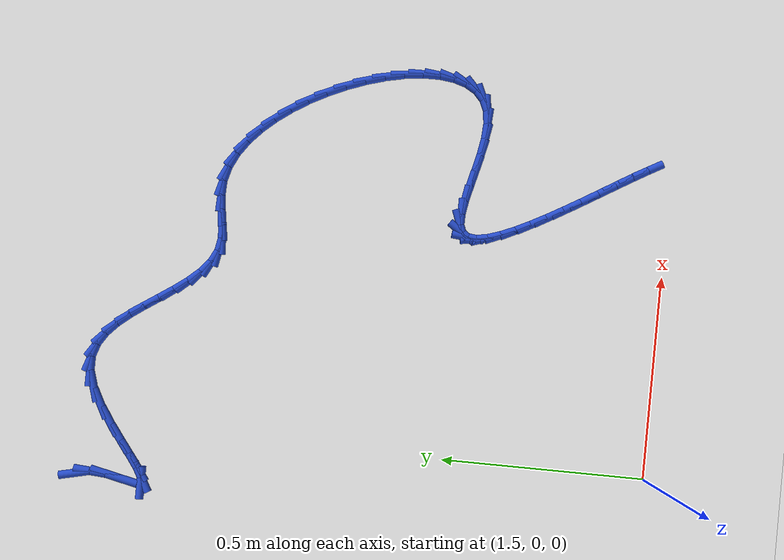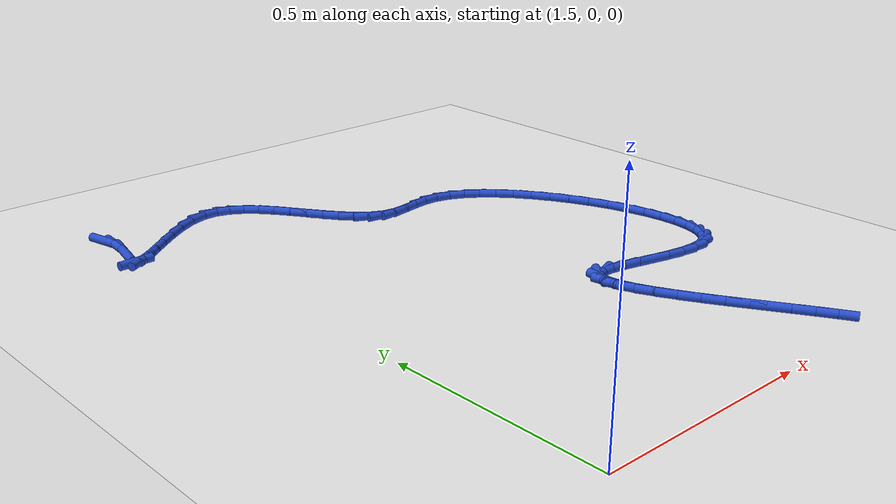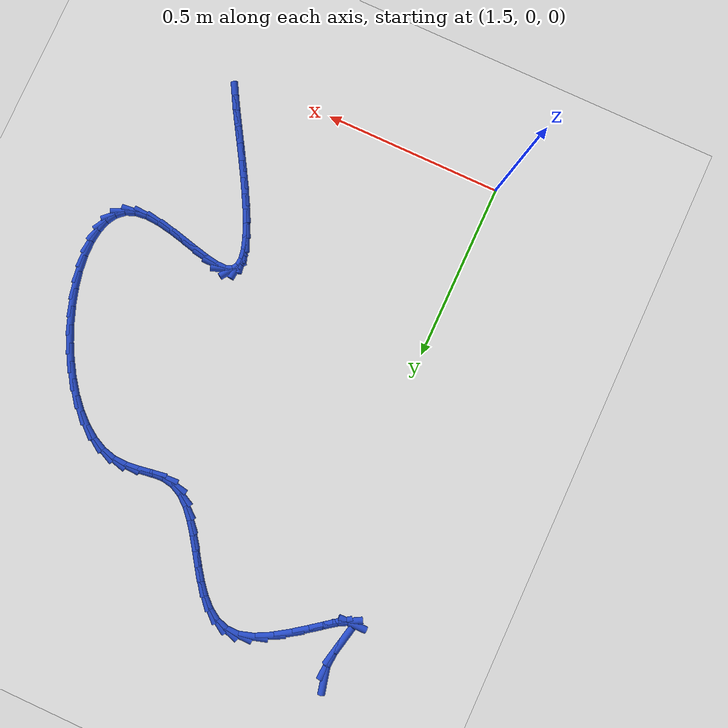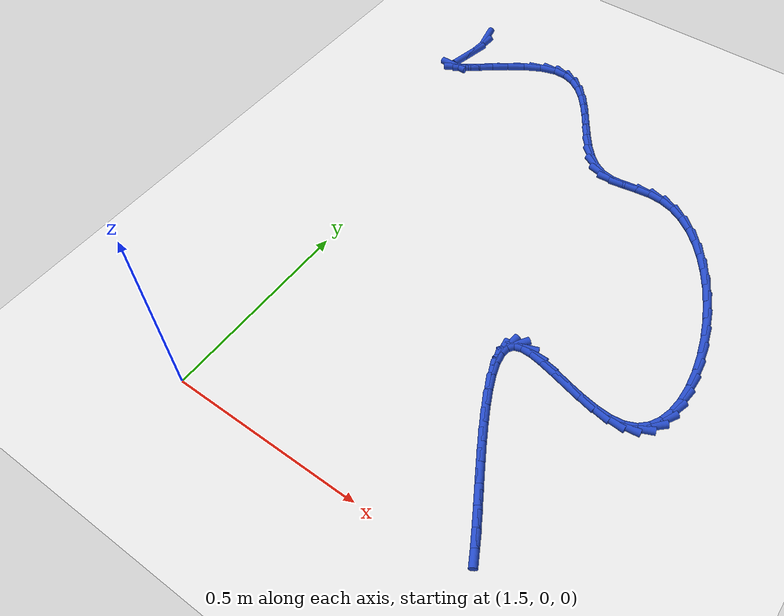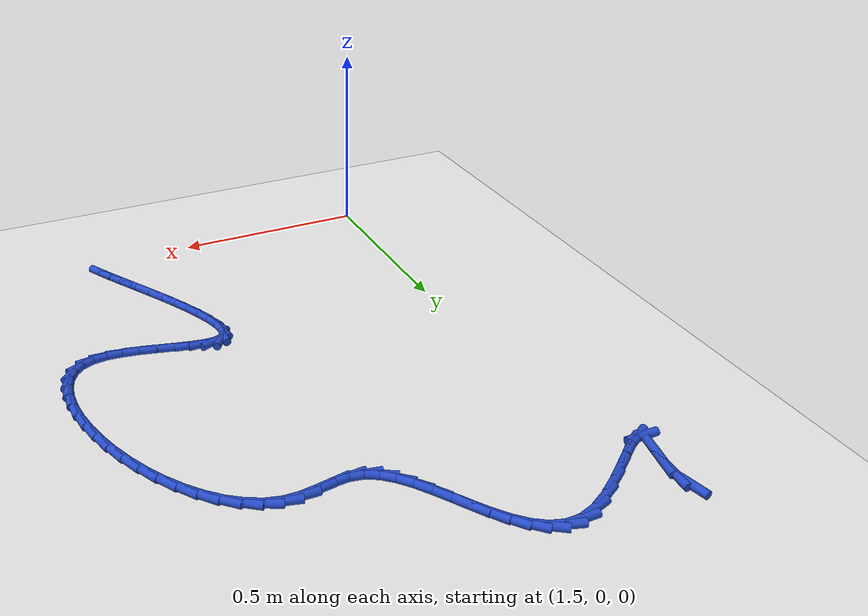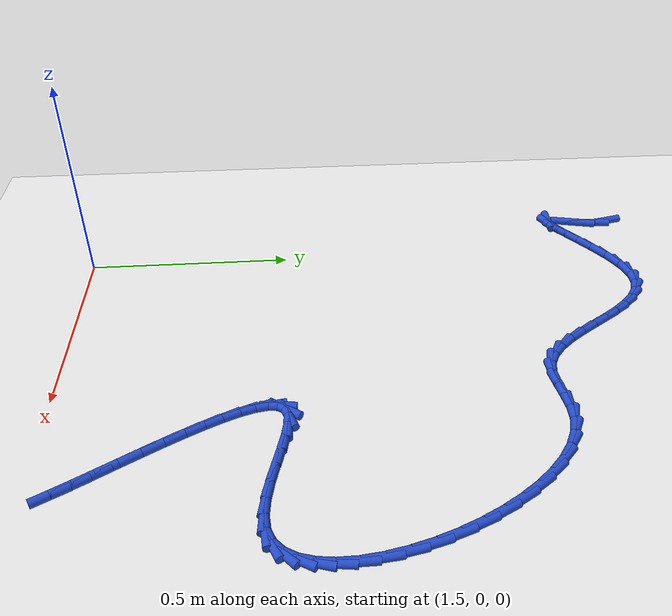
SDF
<sdf version="1.6">
 <world name="default">
  <model name="ground_plane">
   <static>1</static>
   <link name="link">
    <collision name="collision">
     <geometry><plane><normal>0 0 1</normal><size>100 100</size></plane></geometry>
     <surface><friction><ode><mu>100</mu><mu2>50</mu2></ode></friction></surface>
    </collision>
    <visual name="visual">
     <cast_shadows>0</cast_shadows>
     <geometry><plane><normal>0 0 1</normal><size>100 100</size></plane></geometry>
     <material>
      <script><uri>file://media/materials/scripts/gazebo.material</uri><name>Gazebo/WhiteGlow</name></script>
     </material>
    </visual>
   </link>
  </model>
  <model name="line">
   <link name="link_69">
    <pose>1.3833979452334115 1.3932117592749724 0.01 0 1.57 -1.3432471710661074</pose>
    <collision name="collision">
     <geometry><cylinder><radius>0.01</radius><length>0.08</length></cylinder></geometry>
    </collision>
    <visual name="visual">
     <material>
      <script><name>Gazebo/Blue</name><uri>file://media/materials/scripts/gazebo.material</uri></script>
     </material>
     <geometry><cylinder><radius>0.01</radius><length>0.08</length></cylinder></geometry>
    </visual>
   </link>
   <link name="link_70">
    <pose>1.3915658045837955 1.3579385155905102 0.01 0 1.57 1.4942122126148025</pose>
    <collision name="collision">
     <geometry><cylinder><radius>0.01</radius><length>0.08</length></cylinder></geometry>
    </collision>
    <visual name="visual">
     <material>
      <script><name>Gazebo/Blue</name><uri>file://media/materials/scripts/gazebo.material</uri></script>
     </material>
     <geometry><cylinder><radius>0.01</radius><length>0.08</length></cylinder></geometry>
    </visual>
   </link>
   <link name="link_71">
    <pose>1.3884750019547014 1.3176591750437523 0.01 0 1.57 1.3556691968439516</pose>
    <collision name="collision">
     <geometry><cylinder><radius>0.01</radius><length>0.08</length></cylinder></geometry>
    </collision>
    <visual name="visual">
     <material>
      <script><name>Gazebo/Blue</name><uri>file://media/materials/scripts/gazebo.material</uri></script>
     </material>
     <geometry><cylinder><radius>0.01</radius><length>0.08</length></cylinder></geometry>
    </visual>
   </link>
   <link name="link_72">
    <pose>1.3798650765142189 1.278255998444669 0.01 0 1.57 1.358058329380303</pose>
    <collision name="collision">
     <geometry><cylinder><radius>0.01</radius><length>0.08</length></cylinder></geometry>
    </collision>
    <visual name="visual">
     <material>
      <script><name>Gazebo/Blue</name><uri>file://media/materials/scripts/gazebo.material</uri></script>
     </material>
     <geometry><cylinder><radius>0.01</radius><length>0.08</length></cylinder></geometry>
    </visual>
   </link>
   <link name="link_74">
    <pose>1.3753025968581214 1.230697397172222 0.01 0 1.57 0.007656908080991426</pose>
    <collision name="collision">
     <geometry><cylinder><radius>0.01</radius><length>0.08</length></cylinder></geometry>
    </collision>
    <visual name="visual">
     <material>
      <script><name>Gazebo/Blue</name><uri>file://media/materials/scripts/gazebo.material</uri></script>
     </material>
     <geometry><cylinder><radius>0.01</radius><length>0.08</length></cylinder></geometry>
    </visual>
   </link>
   <link name="link_75">
    <pose>1.3887966130934144 1.2308007216334307 0.01 0 1.57 0.5124250686011934</pose>
    <collision name="collision">
     <geometry><cylinder><radius>0.01</radius><length>0.08</length></cylinder></geometry>
    </collision>
    <visual name="visual">
     <material>
      <script><name>Gazebo/Blue</name><uri>file://media/materials/scripts/gazebo.material</uri></script>
     </material>
     <geometry><cylinder><radius>0.01</radius><length>0.08</length></cylinder></geometry>
    </visual>
   </link>
   <link name="link_76">
    <pose>1.4117584286953866 1.2437178192656573 0.01 0 1.57 0.6257974492339531</pose>
    <collision name="collision">
     <geometry><cylinder><radius>0.01</radius><length>0.08</length></cylinder></geometry>
    </collision>
    <visual name="visual">
     <material>
      <script><name>Gazebo/Blue</name><uri>file://media/materials/scripts/gazebo.material</uri></script>
     </material>
     <geometry><cylinder><radius>0.01</radius><length>0.08</length></cylinder></geometry>
    </visual>
   </link>
   <link name="link_77">
    <pose>1.4422191357585767 1.265731701974781 0.01 0 1.57 0.650587838875771</pose>
    <collision name="collision">
     <geometry><cylinder><radius>0.01</radius><length>0.08</length></cylinder></geometry>
    </collision>
    <visual name="visual">
     <material>
      <script><name>Gazebo/Blue</name><uri>file://media/materials/scripts/gazebo.material</uri></script>
     </material>
     <geometry><cylinder><radius>0.01</radius><length>0.08</length></cylinder></geometry>
    </visual>
   </link>
   <link name="link_78">
    <pose>1.478209826377526 1.2931253816666812 0.01 0 1.57 0.6336009561268299</pose>
    <collision name="collision">
     <geometry><cylinder><radius>0.01</radius><length>0.08</length></cylinder></geometry>
    </collision>
    <visual name="visual">
     <material>
      <script><name>Gazebo/Blue</name><uri>file://media/materials/scripts/gazebo.material</uri></script>
     </material>
     <geometry><cylinder><radius>0.01</radius><length>0.08</length></cylinder></geometry>
    </visual>
   </link>
   <link name="link_79">
    <pose>1.5177615926467718 1.3221818702472354 0.01 0 1.57 0.580783580275202</pose>
    <collision name="collision">
     <geometry><cylinder><radius>0.01</radius><length>0.08</length></cylinder></geometry>
    </collision>
    <visual name="visual">
     <material>
      <script><name>Gazebo/Blue</name><uri>file://media/materials/scripts/gazebo.material</uri></script>
     </material>
     <geometry><cylinder><radius>0.01</radius><length>0.08</length></cylinder></geometry>
    </visual>
   </link>
   <link name="link_80">
    <pose>1.5589055266608547 1.3491841796223227 0.01 0 1.57 0.48014084943764557</pose>
    <collision name="collision">
     <geometry><cylinder><radius>0.01</radius><length>0.08</length></cylinder></geometry>
    </collision>
    <visual name="visual">
     <material>
      <script><name>Gazebo/Blue</name><uri>file://media/materials/scripts/gazebo.material</uri></script>
     </material>
     <geometry><cylinder><radius>0.01</radius><length>0.08</length></cylinder></geometry>
    </visual>
   </link>
   <link name="link_81">
    <pose>1.5996727205143142 1.3704153216978223 0.01 0 1.57 0.296787087971596</pose>
    <collision name="collision">
     <geometry><cylinder><radius>0.01</radius><length>0.08</length></cylinder></geometry>
    </collision>
    <visual name="visual">
     <material>
      <script><name>Gazebo/Blue</name><uri>file://media/materials/scripts/gazebo.material</uri></script>
     </material>
     <geometry><cylinder><radius>0.01</radius><length>0.08</length></cylinder></geometry>
    </visual>
   </link>
   <link name="link_82">
    <pose>1.638098013437963 1.3821665209838672 0.01 0 1.57 0.0041430249642170685</pose>
    <collision name="collision">
     <geometry><cylinder><radius>0.01</radius><length>0.08</length></cylinder></geometry>
    </collision>
    <visual name="visual">
     <material>
      <script><name>Gazebo/Blue</name><uri>file://media/materials/scripts/gazebo.material</uri></script>
     </material>
     <geometry><cylinder><radius>0.01</radius><length>0.08</length></cylinder></geometry>
    </visual>
   </link>
   <link name="link_83">
    <pose>1.6729379956505088 1.3823108647257978 0.01 0 1.57 -0.310486797019024</pose>
    <collision name="collision">
     <geometry><cylinder><radius>0.01</radius><length>0.08</length></cylinder></geometry>
    </collision>
    <visual name="visual">
     <material>
      <script><name>Gazebo/Blue</name><uri>file://media/materials/scripts/gazebo.material</uri></script>
     </material>
     <geometry><cylinder><radius>0.01</radius><length>0.08</length></cylinder></geometry>
    </visual>
   </link>
   <link name="link_84">
    <pose>1.7045252880999642 1.3721756291095135 0.01 0 1.57 -0.5730247649587342</pose>
    <collision name="collision">
     <geometry><cylinder><radius>0.01</radius><length>0.08</length></cylinder></geometry>
    </collision>
    <visual name="visual">
     <material>
      <script><name>Gazebo/Blue</name><uri>file://media/materials/scripts/gazebo.material</uri></script>
     </material>
     <geometry><cylinder><radius>0.01</radius><length>0.08</length></cylinder></geometry>
    </visual>
   </link>
   <link name="link_85">
    <pose>1.7334005437935878 1.3535440345007865 0.01 0 1.57 -0.7592912214901074</pose>
    <collision name="collision">
     <geometry><cylinder><radius>0.01</radius><length>0.08</length></cylinder></geometry>
    </collision>
    <visual name="visual">
     <material>
      <script><name>Gazebo/Blue</name><uri>file://media/materials/scripts/gazebo.material</uri></script>
     </material>
     <geometry><cylinder><radius>0.01</radius><length>0.08</length></cylinder></geometry>
    </visual>
   </link>
   <link name="link_86">
    <pose>1.760104415738638 1.3281993012653897 0.01 0 1.57 -0.8791015878494242</pose>
    <collision name="collision">
     <geometry><cylinder><radius>0.01</radius><length>0.08</length></cylinder></geometry>
    </collision>
    <visual name="visual">
     <material>
      <script><name>Gazebo/Blue</name><uri>file://media/materials/scripts/gazebo.material</uri></script>
     </material>
     <geometry><cylinder><radius>0.01</radius><length>0.08</length></cylinder></geometry>
    </visual>
   </link>
   <link name="link_87">
    <pose>1.785177556942373 1.2979246497690953 0.01 0 1.57 -0.9483575974236351</pose>
    <collision name="collision">
     <geometry><cylinder><radius>0.01</radius><length>0.08</length></cylinder></geometry>
    </collision>
    <visual name="visual">
     <material>
      <script><name>Gazebo/Blue</name><uri>file://media/materials/scripts/gazebo.material</uri></script>
     </material>
     <geometry><cylinder><radius>0.01</radius><length>0.08</length></cylinder></geometry>
    </visual>
   </link>
   <link name="link_88">
    <pose>1.8091606204120503 1.2645033003776762 0.01 0 1.57 -0.9779580653650763</pose>
    <collision name="collision">
     <geometry><cylinder><radius>0.01</radius><length>0.08</length></cylinder></geometry>
    </collision>
    <visual name="visual">
     <material>
      <script><name>Gazebo/Blue</name><uri>file://media/materials/scripts/gazebo.material</uri></script>
     </material>
     <geometry><cylinder><radius>0.01</radius><length>0.08</length></cylinder></geometry>
    </visual>
   </link>
   <link name="link_89">
    <pose>1.8325942591549291 1.2297184734569055 0.01 0 1.57 -0.9724940905177731</pose>
    <collision name="collision">
     <geometry><cylinder><radius>0.01</radius><length>0.08</length></cylinder></geometry>
    </collision>
    <visual name="visual">
     <material>
      <script><name>Gazebo/Blue</name><uri>file://media/materials/scripts/gazebo.material</uri></script>
     </material>
     <geometry><cylinder><radius>0.01</radius><length>0.08</length></cylinder></geometry>
    </visual>
   </link>
   <link name="link_90">
    <pose>1.8560191261782668 1.1953533893725552 0.01 0 1.57 -0.9305835244392706</pose>
    <collision name="collision">
     <geometry><cylinder><radius>0.01</radius><length>0.08</length></cylinder></geometry>
    </collision>
    <visual name="visual">
     <material>
      <script><name>Gazebo/Blue</name><uri>file://media/materials/scripts/gazebo.material</uri></script>
     </material>
     <geometry><cylinder><radius>0.01</radius><length>0.08</length></cylinder></geometry>
    </visual>
   </link>
   <link name="link_91">
    <pose>1.8799758744893222 1.1631912684903973 0.01 0 1.57 -0.8444711951058582</pose>
    <collision name="collision">
     <geometry><cylinder><radius>0.01</radius><length>0.08</length></cylinder></geometry>
    </collision>
    <visual name="visual">
     <material>
      <script><name>Gazebo/Blue</name><uri>file://media/materials/scripts/gazebo.material</uri></script>
     </material>
     <geometry><cylinder><radius>0.01</radius><length>0.08</length></cylinder></geometry>
    </visual>
   </link>
   <link name="link_92">
    <pose>1.905005157095353 1.135015331176206 0.01 0 1.57 -0.6992505927847418</pose>
    <collision name="collision">
     <geometry><cylinder><radius>0.01</radius><length>0.08</length></cylinder></geometry>
    </collision>
    <visual name="visual">
     <material>
      <script><name>Gazebo/Blue</name><uri>file://media/materials/scripts/gazebo.material</uri></script>
     </material>
     <geometry><cylinder><radius>0.01</radius><length>0.08</length></cylinder></geometry>
    </visual>
   </link>
   <link name="link_93">
    <pose>1.931647627003618 1.1126087977957528 0.01 0 1.57 -0.4762287479043316</pose>
    <collision name="collision">
     <geometry><cylinder><radius>0.01</radius><length>0.08</length></cylinder></geometry>
    </collision>
    <visual name="visual">
     <material>
      <script><name>Gazebo/Blue</name><uri>file://media/materials/scripts/gazebo.material</uri></script>
     </material>
     <geometry><cylinder><radius>0.01</radius><length>0.08</length></cylinder></geometry>
    </visual>
   </link>
   <link name="link_94">
    <pose>1.9604439372213749 1.0977548887148105 0.01 0 1.57 -0.17779847485778688</pose>
    <collision name="collision">
     <geometry><cylinder><radius>0.01</radius><length>0.08</length></cylinder></geometry>
    </collision>
    <visual name="visual">
     <material>
      <script><name>Gazebo/Blue</name><uri>file://media/materials/scripts/gazebo.material</uri></script>
     </material>
     <geometry><cylinder><radius>0.01</radius><length>0.08</length></cylinder></geometry>
    </visual>
   </link>
   <link name="link_95">
    <pose>1.991905449664265 1.092101380393657 0.01 0 1.57 0.06319662898134759</pose>
    <collision name="collision">
     <geometry><cylinder><radius>0.01</radius><length>0.08</length></cylinder></geometry>
    </collision>
    <visual name="visual">
     <material>
      <script><name>Gazebo/Blue</name><uri>file://media/materials/scripts/gazebo.material</uri></script>
     </material>
     <geometry><cylinder><radius>0.01</radius><length>0.08</length></cylinder></geometry>
    </visual>
   </link>
   <link name="link_96">
    <pose>2.025885143727892 1.0942516458614768 0.01 0 1.57 0.15427406859390655</pose>
    <collision name="collision">
     <geometry><cylinder><radius>0.01</radius><length>0.08</length></cylinder></geometry>
    </collision>
    <visual name="visual">
     <material>
      <script><name>Gazebo/Blue</name><uri>file://media/materials/scripts/gazebo.material</uri></script>
     </material>
     <geometry><cylinder><radius>0.01</radius><length>0.08</length></cylinder></geometry>
    </visual>
   </link>
   <link name="link_97">
    <pose>2.061586012565122 1.0998034796465805 0.01 0 1.57 0.12028614673703551</pose>
    <collision name="collision">
     <geometry><cylinder><radius>0.01</radius><length>0.08</length></cylinder></geometry>
    </collision>
    <visual name="visual">
     <material>
      <script><name>Gazebo/Blue</name><uri>file://media/materials/scripts/gazebo.material</uri></script>
     </material>
     <geometry><cylinder><radius>0.01</radius><length>0.08</length></cylinder></geometry>
    </visual>
   </link>
   <link name="link_98">
    <pose>2.0981834375793778 1.1042269977588253 0.01 0 1.57 -0.03303481640896781</pose>
    <collision name="collision">
     <geometry><cylinder><radius>0.01</radius><length>0.08</length></cylinder></geometry>
    </collision>
    <visual name="visual">
     <material>
      <script><name>Gazebo/Blue</name><uri>file://media/materials/scripts/gazebo.material</uri></script>
     </material>
     <geometry><cylinder><radius>0.01</radius><length>0.08</length></cylinder></geometry>
    </visual>
   </link>
   <link name="link_99">
    <pose>2.134854984584672 1.1030151190632886 0.01 0 1.57 -0.25706794410660977</pose>
    <collision name="collision">
     <geometry><cylinder><radius>0.01</radius><length>0.08</length></cylinder></geometry>
    </collision>
    <visual name="visual">
     <material>
      <script><name>Gazebo/Blue</name><uri>file://media/materials/scripts/gazebo.material</uri></script>
     </material>
     <geometry><cylinder><radius>0.01</radius><length>0.08</length></cylinder></geometry>
    </visual>
   </link>
   <link name="link_100">
    <pose>2.170956759395904 1.0935245245841625 0.01 0 1.57 -0.4544599767863064</pose>
    <collision name="collision">
     <geometry><cylinder><radius>0.01</radius><length>0.08</length></cylinder></geometry>
    </collision>
    <visual name="visual">
     <material>
      <script><name>Gazebo/Blue</name><uri>file://media/materials/scripts/gazebo.material</uri></script>
     </material>
     <geometry><cylinder><radius>0.01</radius><length>0.08</length></cylinder></geometry>
    </visual>
   </link>
   <link name="link_101">
    <pose>2.2061530294580707 1.0763287654151057 0.01 0 1.57 -0.615027809116038</pose>
    <collision name="collision">
     <geometry><cylinder><radius>0.01</radius><length>0.08</length></cylinder></geometry>
    </collision>
    <visual name="visual">
     <material>
      <script><name>Gazebo/Blue</name><uri>file://media/materials/scripts/gazebo.material</uri></script>
     </material>
     <geometry><cylinder><radius>0.01</radius><length>0.08</length></cylinder></geometry>
    </visual>
   </link>
   <link name="link_102">
    <pose>2.240138617413427 1.052320355459951 0.01 0 1.57 -0.744695465259945</pose>
    <collision name="collision">
     <geometry><cylinder><radius>0.01</radius><length>0.08</length></cylinder></geometry>
    </collision>
    <visual name="visual">
     <material>
      <script><name>Gazebo/Blue</name><uri>file://media/materials/scripts/gazebo.material</uri></script>
     </material>
     <geometry><cylinder><radius>0.01</radius><length>0.08</length></cylinder></geometry>
    </visual>
   </link>
   <link name="link_103">
    <pose>2.2726083459042288 1.0223918086225305 0.01 0 1.57 -0.8509619679813636</pose>
    <collision name="collision">
     <geometry><cylinder><radius>0.01</radius><length>0.08</length></cylinder></geometry>
    </collision>
    <visual name="visual">
     <material>
      <script><name>Gazebo/Blue</name><uri>file://media/materials/scripts/gazebo.material</uri></script>
     </material>
     <geometry><cylinder><radius>0.01</radius><length>0.08</length></cylinder></geometry>
    </visual>
   </link>
   <link name="link_104">
    <pose>2.3032570375727297 0.9874356388066755 0.01 0 1.57 -0.9404548484370029</pose>
    <collision name="collision">
     <geometry><cylinder><radius>0.01</radius><length>0.08</length></cylinder></geometry>
    </collision>
    <visual name="visual">
     <material>
      <script><name>Gazebo/Blue</name><uri>file://media/materials/scripts/gazebo.material</uri></script>
     </material>
     <geometry><cylinder><radius>0.01</radius><length>0.08</length></cylinder></geometry>
    </visual>
   </link>
   <link name="link_105">
    <pose>2.3317795150611844 0.9483443599162197 0.01 0 1.57 -1.018465352022466</pose>
    <collision name="collision">
     <geometry><cylinder><radius>0.01</radius><length>0.08</length></cylinder></geometry>
    </collision>
    <visual name="visual">
     <material>
      <script><name>Gazebo/Blue</name><uri>file://media/materials/scripts/gazebo.material</uri></script>
     </material>
     <geometry><cylinder><radius>0.01</radius><length>0.08</length></cylinder></geometry>
    </visual>
   </link>
   <link name="link_106">
    <pose>2.3578706010118466 0.906010485854994 0.01 0 1.57 -1.0891854694663665</pose>
    <collision name="collision">
     <geometry><cylinder><radius>0.01</radius><length>0.08</length></cylinder></geometry>
    </collision>
    <visual name="visual">
     <material>
      <script><name>Gazebo/Blue</name><uri>file://media/materials/scripts/gazebo.material</uri></script>
     </material>
     <geometry><cylinder><radius>0.01</radius><length>0.08</length></cylinder></geometry>
    </visual>
   </link>
   <link name="link_107">
    <pose>2.3812251180669732 0.8613265305268312 0.01 0 1.57 -1.1560988025883663</pose>
    <collision name="collision">
     <geometry><cylinder><radius>0.01</radius><length>0.08</length></cylinder></geometry>
    </collision>
    <visual name="visual">
     <material>
      <script><name>Gazebo/Blue</name><uri>file://media/materials/scripts/gazebo.material</uri></script>
     </material>
     <geometry><cylinder><radius>0.01</radius><length>0.08</length></cylinder></geometry>
    </visual>
   </link>
   <link name="link_108">
    <pose>2.401537888868817 0.815185007835563 0.01 0 1.57 -1.2223725946833357</pose>
    <collision name="collision">
     <geometry><cylinder><radius>0.01</radius><length>0.08</length></cylinder></geometry>
    </collision>
    <visual name="visual">
     <material>
      <script><name>Gazebo/Blue</name><uri>file://media/materials/scripts/gazebo.material</uri></script>
     </material>
     <geometry><cylinder><radius>0.01</radius><length>0.08</length></cylinder></geometry>
    </visual>
   </link>
   <link name="link_109">
    <pose>2.418503736059632 0.7684784316850207 0.01 0 1.57 -1.2912498268324346</pose>
    <collision name="collision">
     <geometry><cylinder><radius>0.01</radius><length>0.08</length></cylinder></geometry>
    </collision>
    <visual name="visual">
     <material>
      <script><name>Gazebo/Blue</name><uri>file://media/materials/scripts/gazebo.material</uri></script>
     </material>
     <geometry><cylinder><radius>0.01</radius><length>0.08</length></cylinder></geometry>
    </visual>
   </link>
   <link name="link_110">
    <pose>2.431817482281675 0.7220993159790382 0.01 0 1.57 -1.3664981204259572</pose>
    <collision name="collision">
     <geometry><cylinder><radius>0.01</radius><length>0.08</length></cylinder></geometry>
    </collision>
    <visual name="visual">
     <material>
      <script><name>Gazebo/Blue</name><uri>file://media/materials/scripts/gazebo.material</uri></script>
     </material>
     <geometry><cylinder><radius>0.01</radius><length>0.08</length></cylinder></geometry>
    </visual>
   </link>
   <link name="link_111">
    <pose>2.441173950177199 0.6769401746214467 0.01 0 1.57 -1.4530071049433193</pose>
    <collision name="collision">
     <geometry><cylinder><radius>0.01</radius><length>0.08</length></cylinder></geometry>
    </collision>
    <visual name="visual">
     <material>
      <script><name>Gazebo/Blue</name><uri>file://media/materials/scripts/gazebo.material</uri></script>
     </material>
     <geometry><cylinder><radius>0.01</radius><length>0.08</length></cylinder></geometry>
    </visual>
   </link>
   <link name="link_112">
    <pose>2.4462679623884593 0.6338935215160785 0.01 0 1.57 -1.5576512931011894</pose>
    <collision name="collision">
     <geometry><cylinder><radius>0.01</radius><length>0.08</length></cylinder></geometry>
    </collision>
    <visual name="visual">
     <material>
      <script><name>Gazebo/Blue</name><uri>file://media/materials/scripts/gazebo.material</uri></script>
     </material>
     <geometry><cylinder><radius>0.01</radius><length>0.08</length></cylinder></geometry>
    </visual>
   </link>
   <link name="link_113">
    <pose>2.44679434155771 0.5938518705667648 0.01 0 1.57 1.4511182567010308</pose>
    <collision name="collision">
     <geometry><cylinder><radius>0.01</radius><length>0.08</length></cylinder></geometry>
    </collision>
    <visual name="visual">
     <material>
      <script><name>Gazebo/Blue</name><uri>file://media/materials/scripts/gazebo.material</uri></script>
     </material>
     <geometry><cylinder><radius>0.01</radius><length>0.08</length></cylinder></geometry>
    </visual>
   </link>
   <link name="link_114">
    <pose>2.442447910327206 0.5577077356773394 0.01 0 1.57 1.2758849255384994</pose>
    <collision name="collision">
     <geometry><cylinder><radius>0.01</radius><length>0.08</length></cylinder></geometry>
    </collision>
    <visual name="visual">
     <material>
      <script><name>Gazebo/Blue</name><uri>file://media/materials/scripts/gazebo.material</uri></script>
     </material>
     <geometry><cylinder><radius>0.01</radius><length>0.08</length></cylinder></geometry>
    </visual>
   </link>
   <link name="link_115">
    <pose>2.4329234913392015 0.5263536307516333 0.01 0 1.57 1.0417776262417417</pose>
    <collision name="collision">
     <geometry><cylinder><radius>0.01</radius><length>0.08</length></cylinder></geometry>
    </collision>
    <visual name="visual">
     <material>
      <script><name>Gazebo/Blue</name><uri>file://media/materials/scripts/gazebo.material</uri></script>
     </material>
     <geometry><cylinder><radius>0.01</radius><length>0.08</length></cylinder></geometry>
    </visual>
   </link>
   <link name="link_116">
    <pose>2.417915907235952 0.5006820696934791 0.01 0 1.57 0.7428237604066246</pose>
    <collision name="collision">
     <geometry><cylinder><radius>0.01</radius><length>0.08</length></cylinder></geometry>
    </collision>
    <visual name="visual">
     <material>
      <script><name>Gazebo/Blue</name><uri>file://media/materials/scripts/gazebo.material</uri></script>
     </material>
     <geometry><cylinder><radius>0.01</radius><length>0.08</length></cylinder></geometry>
    </visual>
   </link>
   <link name="link_117">
    <pose>2.3971199806597108 0.48158556640670813 0.01 0 1.57 0.4081835720563555</pose>
    <collision name="collision">
     <geometry><cylinder><radius>0.01</radius><length>0.08</length></cylinder></geometry>
    </collision>
    <visual name="visual">
     <material>
      <script><name>Gazebo/Blue</name><uri>file://media/materials/scripts/gazebo.material</uri></script>
     </material>
     <geometry><cylinder><radius>0.01</radius><length>0.08</length></cylinder></geometry>
    </visual>
   </link>
   <link name="link_118">
    <pose>2.3702305553939587 0.4699566066674147 0.01 0 1.57 0.11485446364887683</pose>
    <collision name="collision">
     <geometry><cylinder><radius>0.01</radius><length>0.08</length></cylinder></geometry>
    </collision>
    <visual name="visual">
     <material>
      <script><name>Gazebo/Blue</name><uri>file://media/materials/scripts/gazebo.material</uri></script>
     </material>
     <geometry><cylinder><radius>0.01</radius><length>0.08</length></cylinder></geometry>
    </visual>
   </link>
   <link name="link_119">
    <pose>2.337337580232012 0.4661620013826546 0.01 0 1.57 -0.06771607684438816</pose>
    <collision name="collision">
     <geometry><cylinder><radius>0.01</radius><length>0.08</length></cylinder></geometry>
    </collision>
    <visual name="visual">
     <material>
      <script><name>Gazebo/Blue</name><uri>file://media/materials/scripts/gazebo.material</uri></script>
     </material>
     <geometry><cylinder><radius>0.01</radius><length>0.08</length></cylinder></geometry>
    </visual>
   </link>
   <link name="link_120">
    <pose>2.2999365466116104 0.4686985308925866 0.01 0 1.57 -0.17157772400018245</pose>
    <collision name="collision">
     <geometry><cylinder><radius>0.01</radius><length>0.08</length></cylinder></geometry>
    </collision>
    <visual name="visual">
     <material>
      <script><name>Gazebo/Blue</name><uri>file://media/materials/scripts/gazebo.material</uri></script>
     </material>
     <geometry><cylinder><radius>0.01</radius><length>0.08</length></cylinder></geometry>
    </visual>
   </link>
   <link name="link_121">
    <pose>2.259835355421778 0.47564732452485003 0.01 0 1.57 -0.22638563631423206</pose>
    <collision name="collision">
     <geometry><cylinder><radius>0.01</radius><length>0.08</length></cylinder></geometry>
    </collision>
    <visual name="visual">
     <material>
      <script><name>Gazebo/Blue</name><uri>file://media/materials/scripts/gazebo.material</uri></script>
     </material>
     <geometry><cylinder><radius>0.01</radius><length>0.08</length></cylinder></geometry>
    </visual>
   </link>
   <link name="link_122">
    <pose>2.218841907551539 0.48508951160708474 0.01 0 1.57 -0.24491429187209077</pose>
    <collision name="collision">
     <geometry><cylinder><radius>0.01</radius><length>0.08</length></cylinder></geometry>
    </collision>
    <visual name="visual">
     <material>
      <script><name>Gazebo/Blue</name><uri>file://media/materials/scripts/gazebo.material</uri></script>
     </material>
     <geometry><cylinder><radius>0.01</radius><length>0.08</length></cylinder></geometry>
    </visual>
   </link>
   <link name="link_123">
    <pose>2.17876410388992 0.4951062214669299 0.01 0 1.57 -0.228123906133773</pose>
    <collision name="collision">
     <geometry><cylinder><radius>0.01</radius><length>0.08</length></cylinder></geometry>
    </collision>
    <visual name="visual">
     <material>
      <script><name>Gazebo/Blue</name><uri>file://media/materials/scripts/gazebo.material</uri></script>
     </material>
     <geometry><cylinder><radius>0.01</radius><length>0.08</length></cylinder></geometry>
    </visual>
   </link>
   <link name="link_124">
    <pose>2.1414098453259443 0.5037785834320254 0.01 0 1.57 -0.16333024883422712</pose>
    <collision name="collision">
     <geometry><cylinder><radius>0.01</radius><length>0.08</length></cylinder></geometry>
    </collision>
    <visual name="visual">
     <material>
      <script><name>Gazebo/Blue</name><uri>file://media/materials/scripts/gazebo.material</uri></script>
     </material>
     <geometry><cylinder><radius>0.01</radius><length>0.08</length></cylinder></geometry>
    </visual>
   </link>
   <link name="link_125">
    <pose>2.108587032748637 0.5091877268300107 0.01 0 1.57 -0.008573220673229888</pose>
    <collision name="collision">
     <geometry><cylinder><radius>0.01</radius><length>0.08</length></cylinder></geometry>
    </collision>
    <visual name="visual">
     <material>
      <script><name>Gazebo/Blue</name><uri>file://media/materials/scripts/gazebo.material</uri></script>
     </material>
     <geometry><cylinder><radius>0.01</radius><length>0.08</length></cylinder></geometry>
    </visual>
   </link>
   <link name="link_126">
    <pose>2.0821035670470214 0.5094147809885252 0.01 0 1.57 0.3548790934084843</pose>
    <collision name="collision">
     <geometry><cylinder><radius>0.01</radius><length>0.08</length></cylinder></geometry>
    </collision>
    <visual name="visual">
     <material>
      <script><name>Gazebo/Blue</name><uri>file://media/materials/scripts/gazebo.material</uri></script>
     </material>
     <geometry><cylinder><radius>0.01</radius><length>0.08</length></cylinder></geometry>
    </visual>
   </link>
   <link name="link_127">
    <pose>2.063711011110396 0.5025990953806003 0.01 0 1.57 0.9688233250173719</pose>
    <collision name="collision">
     <geometry><cylinder><radius>0.01</radius><length>0.08</length></cylinder></geometry>
    </collision>
    <visual name="visual">
     <material>
      <script><name>Gazebo/Blue</name><uri>file://media/materials/scripts/gazebo.material</uri></script>
     </material>
     <geometry><cylinder><radius>0.01</radius><length>0.08</length></cylinder></geometry>
    </visual>
   </link>
   <link name="link_128">
    <pose>2.0538454192236038 0.48823947672984513 0.01 0 1.57 1.4652117888703344</pose>
    <collision name="collision">
     <geometry><cylinder><radius>0.01</radius><length>0.08</length></cylinder></geometry>
    </collision>
    <visual name="visual">
     <material>
      <script><name>Gazebo/Blue</name><uri>file://media/materials/scripts/gazebo.material</uri></script>
     </material>
     <geometry><cylinder><radius>0.01</radius><length>0.08</length></cylinder></geometry>
    </visual>
   </link>
   <link name="link_129">
    <pose>2.0516162790839716 0.467205616419754 0.01 0 1.57 -1.40581968166991</pose>
    <collision name="collision">
     <geometry><cylinder><radius>0.01</radius><length>0.08</length></cylinder></geometry>
    </collision>
    <visual name="visual">
     <material>
      <script><name>Gazebo/Blue</name><uri>file://media/materials/scripts/gazebo.material</uri></script>
     </material>
     <geometry><cylinder><radius>0.01</radius><length>0.08</length></cylinder></geometry>
    </visual>
   </link>
   <link name="link_130">
    <pose>2.0560745287438955 0.4404277115112744 0.01 0 1.57 -1.2585910897602977</pose>
    <collision name="collision">
     <geometry><cylinder><radius>0.01</radius><length>0.08</length></cylinder></geometry>
    </collision>
    <visual name="visual">
     <material>
      <script><name>Gazebo/Blue</name><uri>file://media/materials/scripts/gazebo.material</uri></script>
     </material>
     <geometry><cylinder><radius>0.01</radius><length>0.08</length></cylinder></geometry>
    </visual>
   </link>
   <link name="link_131">
    <pose>2.066271106255777 0.4088359590653546 0.01 0 1.57 -1.1711052472551733</pose>
    <collision name="collision">
     <geometry><cylinder><radius>0.01</radius><length>0.08</length></cylinder></geometry>
    </collision>
    <visual name="visual">
     <material>
      <script><name>Gazebo/Blue</name><uri>file://media/materials/scripts/gazebo.material</uri></script>
     </material>
     <geometry><cylinder><radius>0.01</radius><length>0.08</length></cylinder></geometry>
    </visual>
   </link>
   <link name="link_132">
    <pose>2.081256949672014 0.37336055614294367 0.01 0 1.57 -1.1152665481223292</pose>
    <collision name="collision">
     <geometry><cylinder><radius>0.01</radius><length>0.08</length></cylinder></geometry>
    </collision>
    <visual name="visual">
     <material>
      <script><name>Gazebo/Blue</name><uri>file://media/materials/scripts/gazebo.material</uri></script>
     </material>
     <geometry><cylinder><radius>0.01</radius><length>0.08</length></cylinder></geometry>
    </visual>
   </link>
   <link name="link_133">
    <pose>2.1000829970450074 0.3349316998049893 0.01 0 1.57 -1.0780960394358932</pose>
    <collision name="collision">
     <geometry><cylinder><radius>0.01</radius><length>0.08</length></cylinder></geometry>
    </collision>
    <visual name="visual">
     <material>
      <script><name>Gazebo/Blue</name><uri>file://media/materials/scripts/gazebo.material</uri></script>
     </material>
     <geometry><cylinder><radius>0.01</radius><length>0.08</length></cylinder></geometry>
    </visual>
   </link>
   <link name="link_134">
    <pose>2.121800186427155 0.29447958711244 0.01 0 1.57 -1.0531180984359088</pose>
    <collision name="collision">
     <geometry><cylinder><radius>0.01</radius><length>0.08</length></cylinder></geometry>
    </collision>
    <visual name="visual">
     <material>
      <script><name>Gazebo/Blue</name><uri>file://media/materials/scripts/gazebo.material</uri></script>
     </material>
     <geometry><cylinder><radius>0.01</radius><length>0.08</length></cylinder></geometry>
    </visual>
   </link>
   <link name="link_135">
    <pose>2.1454594558708595 0.2529344151262432 0.01 0 1.57 -1.0369703041655165</pose>
    <collision name="collision">
     <geometry><cylinder><radius>0.01</radius><length>0.08</length></cylinder></geometry>
    </collision>
    <visual name="visual">
     <material>
      <script><name>Gazebo/Blue</name><uri>file://media/materials/scripts/gazebo.material</uri></script>
     </material>
     <geometry><cylinder><radius>0.01</radius><length>0.08</length></cylinder></geometry>
    </visual>
   </link>
   <link name="link_136">
    <pose>2.1701117434285173 0.21122638090734847 0.01 0 1.57 -1.028012631422751</pose>
    <collision name="collision">
     <geometry><cylinder><radius>0.01</radius><length>0.08</length></cylinder></geometry>
    </collision>
    <visual name="visual">
     <material>
      <script><name>Gazebo/Blue</name><uri>file://media/materials/scripts/gazebo.material</uri></script>
     </material>
     <geometry><cylinder><radius>0.01</radius><length>0.08</length></cylinder></geometry>
    </visual>
   </link>
   <link name="link_137">
    <pose>2.1948079871525286 0.17028568151670337 0.01 0 1.57 -1.0257945100784458</pose>
    <collision name="collision">
     <geometry><cylinder><radius>0.01</radius><length>0.08</length></cylinder></geometry>
    </collision>
    <visual name="visual">
     <material>
      <script><name>Gazebo/Blue</name><uri>file://media/materials/scripts/gazebo.material</uri></script>
     </material>
     <geometry><cylinder><radius>0.01</radius><length>0.08</length></cylinder></geometry>
    </visual>
   </link>
   <link name="link_138">
    <pose>2.2185991250952934 0.13104251401525632 0.01 0 1.57 -1.0308412400695952</pose>
    <collision name="collision">
     <geometry><cylinder><radius>0.01</radius><length>0.08</length></cylinder></geometry>
    </collision>
    <visual name="visual">
     <material>
      <script><name>Gazebo/Blue</name><uri>file://media/materials/scripts/gazebo.material</uri></script>
     </material>
     <geometry><cylinder><radius>0.01</radius><length>0.08</length></cylinder></geometry>
    </visual>
   </link>
   <link name="link_139">
    <pose>2.240587822984121 0.0943560762175564 0.01 0 1.57 -1.0426239414741134</pose>
    <collision name="collision">
     <geometry><cylinder><radius>0.01</radius><length>0.08</length></cylinder></geometry>
    </collision>
    <visual name="visual">
     <material>
      <script><name>Gazebo/Blue</name><uri>file://media/materials/scripts/gazebo.material</uri></script>
     </material>
     <geometry><cylinder><radius>0.01</radius><length>0.08</length></cylinder></geometry>
    </visual>
   </link>
   <link name="link_140">
    <pose>2.2604955505167803 0.06023622144994157 0.01 0 1.57 -1.0608242212103565</pose>
    <collision name="collision">
     <geometry><cylinder><radius>0.01</radius><length>0.08</length></cylinder></geometry>
    </collision>
    <visual name="visual">
     <material>
      <script><name>Gazebo/Blue</name><uri>file://media/materials/scripts/gazebo.material</uri></script>
     </material>
     <geometry><cylinder><radius>0.01</radius><length>0.08</length></cylinder></geometry>
    </visual>
   </link>
  </model>
 </world>
</sdf>
